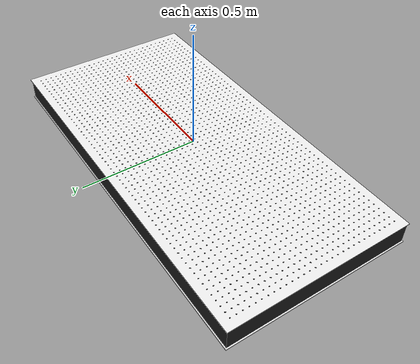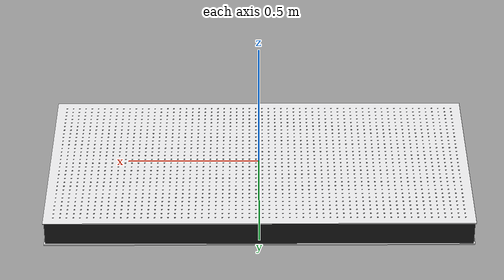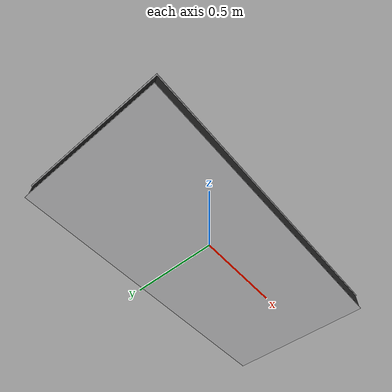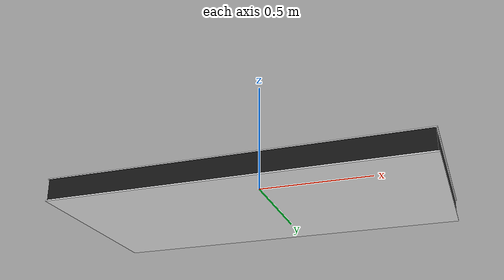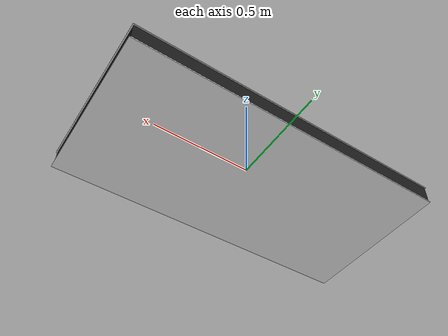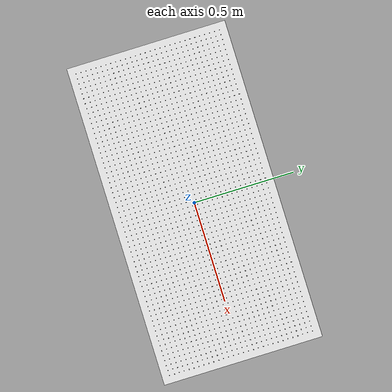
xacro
<?xml version="1.0" encoding="UTF-8"?>
<robot xmlns:xacro="http://www.ros.org/wiki/xacro" name="table">

<link name="table_frame">
  <visual>
    <origin xyz="0 0 0" rpy="0 0 ${pi/2.0}"/>
    <geometry>
      <mesh filename="package://honeycomb_table_description/meshes/honeycomb_table_simplified.dae"/>
    </geometry>
  </visual>
  <collision>
    <origin xyz="0.0 0.0 -0.05" rpy="0.0 0.0 0.0"/>
    <geometry>
      <box size="1.6 0.8 0.1"/>
    </geometry>
  </collision>
</link>

</robot>
